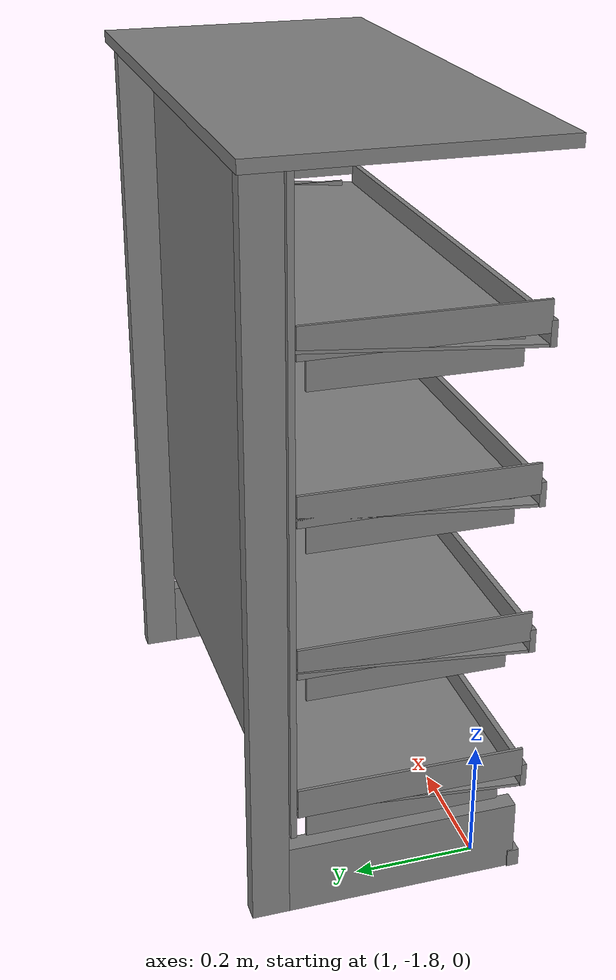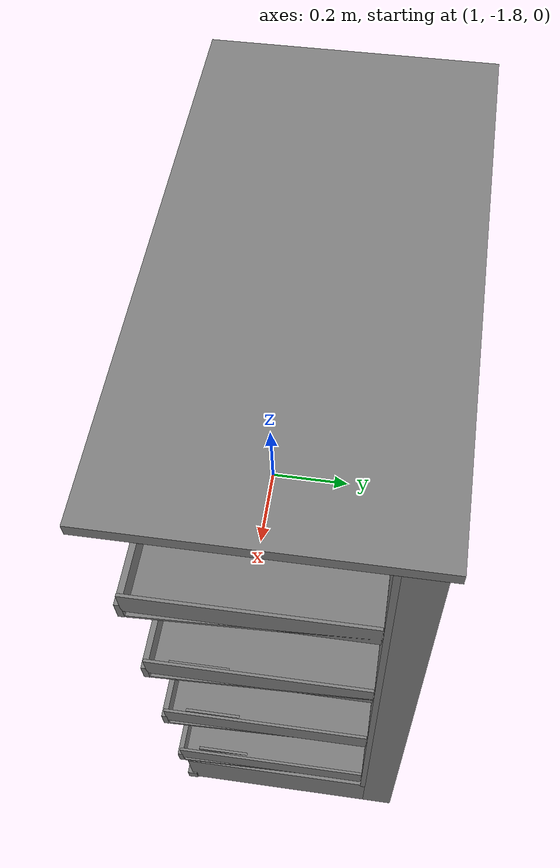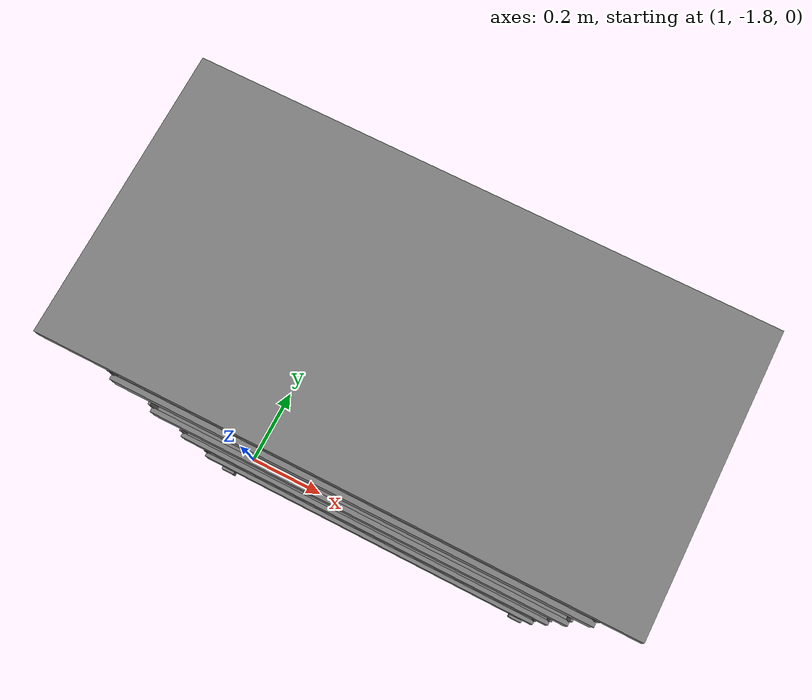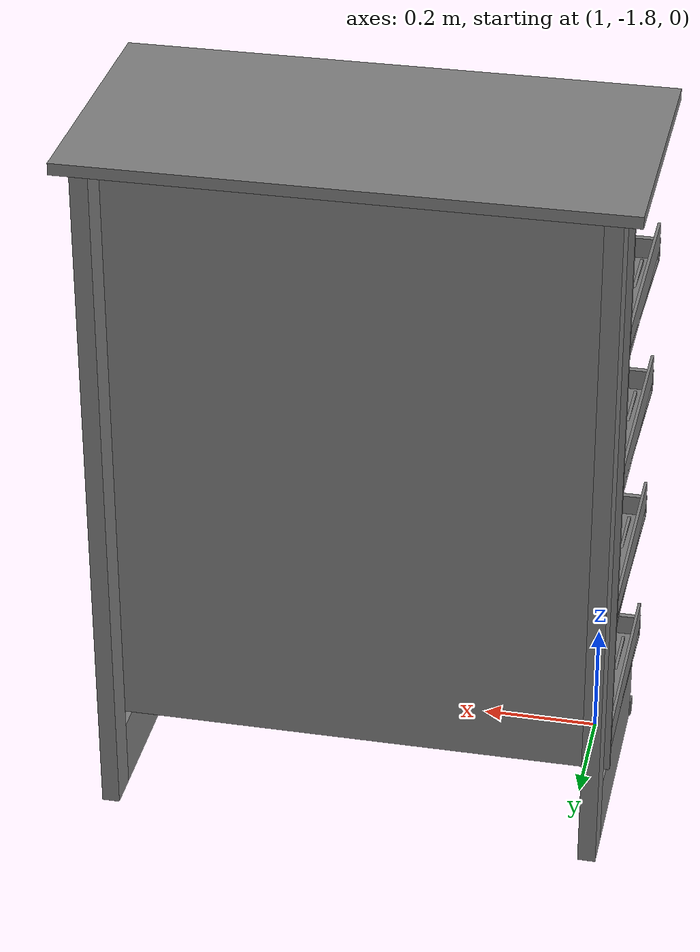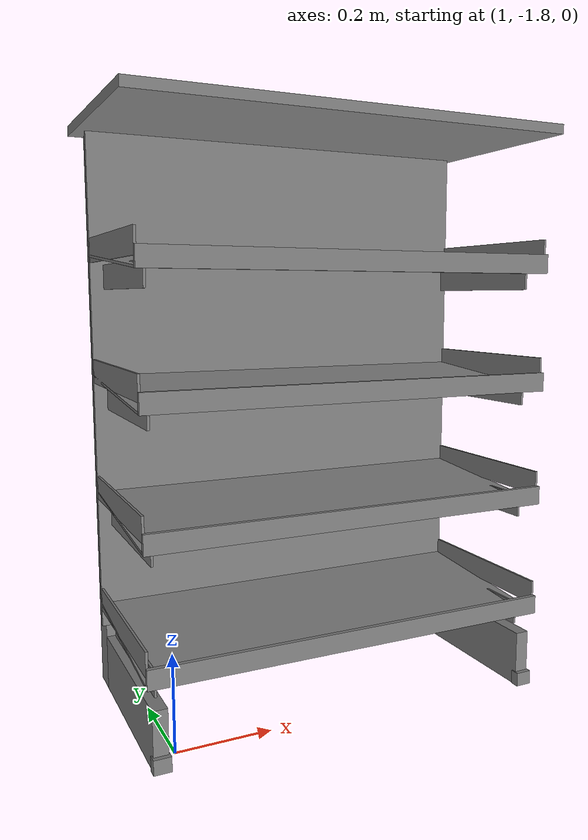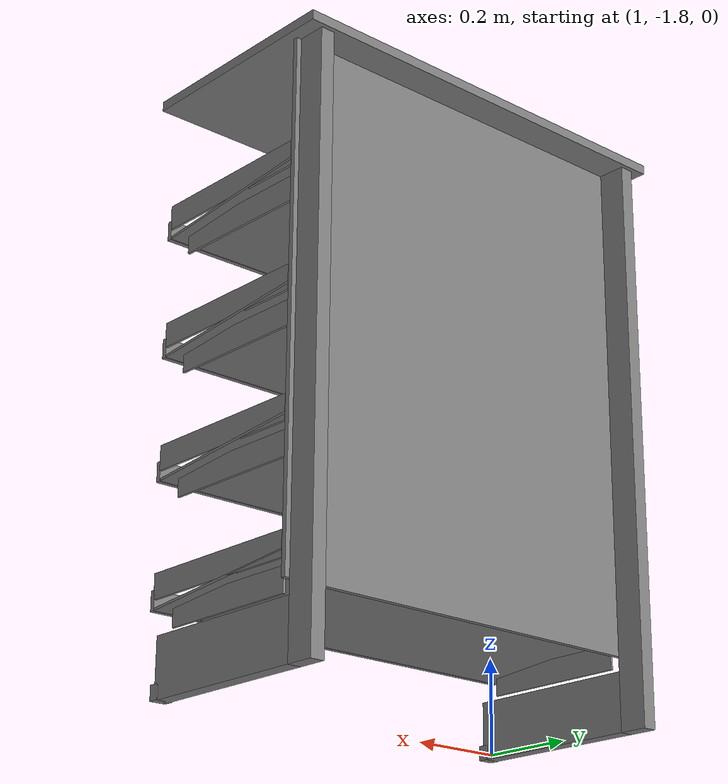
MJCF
<mujoco model="Shelf_Unified_Model">
  <compiler angle="radian"/>

  <worldbody>
    <geom name="Shelf_Unified_Model" size="0.015 0.03 0.6" pos="1.79 -1.44 0.6" quat="1 -1.73205e-07 -1.73205e-07 -1.73205e-07" type="box"/>
    <geom size="0.015 0.19 0.06" pos="1.79 -1.66 0.06" quat="1 -1.73205e-07 -1.73205e-07 -1.73205e-07" type="box"/>
    <geom size="0.015 0.03 0.6" pos="0.96 -1.44 0.6" quat="1 -1.73205e-07 -1.73205e-07 -1.73205e-07" type="box"/>
    <geom size="0.015 0.19 0.06" pos="0.96 -1.66 0.06" quat="1 -1.73205e-07 -1.73205e-07 -1.73205e-07" type="box"/>
    <geom size="0.0175 0.01 0.015" pos="1.79 -1.85 0.015" quat="1 -1.73205e-07 -1.73205e-07 -1.73205e-07" type="box"/>
    <geom size="0.0175 0.01 0.015" pos="0.96 -1.85 0.015" quat="1 -1.73205e-07 -1.73205e-07 -1.73205e-07" type="box"/>
    <geom size="0.46 0.235 0.01" pos="1.375 -1.635 1.21" quat="1 -1.73205e-07 -1.73205e-07 -1.73205e-07" type="box"/>
    <geom size="0.44 0.005 0.525" pos="1.375 -1.475 0.675" quat="1 -1.73205e-07 -1.73205e-07 -1.73205e-07" type="box"/>
    <geom size="0.44 0.185 0.0025" pos="1.375 -1.6643 0.183876" quat="0.999048 0.0436195 -1.80595e-07 -1.65485e-07" type="box"/>
    <geom size="0.44 0.185 0.0025" pos="1.375 -1.6643 0.433876" quat="0.999048 0.0436195 -1.80595e-07 -1.65485e-07" type="box"/>
    <geom size="0.44 0.185 0.0025" pos="1.375 -1.6643 0.683876" quat="0.999048 0.0436195 -1.80595e-07 -1.65485e-07" type="box"/>
    <geom size="0.44 0.185 0.0025" pos="1.375 -1.6643 0.933876" quat="0.999048 0.0436195 -1.80595e-07 -1.65485e-07" type="box"/>
    <geom size="0.0025 0.16 0.025" pos="1.79 -1.6619 0.156481" quat="1 -1.73205e-07 -1.73205e-07 -1.73205e-07" type="box"/>
    <geom size="0.0025 0.16 0.025" pos="0.96 -1.6619 0.156481" quat="1 -1.73205e-07 -1.73205e-07 -1.73205e-07" type="box"/>
    <geom size="0.44 0.005 0.02" pos="1.375 -1.8551 0.18475" quat="1 -1.73205e-07 -1.73205e-07 -1.73205e-07" type="box"/>
    <geom size="0.0025 0.185 0.025" pos="1.8125 -1.66669 0.211272" quat="1 -1.73205e-07 -1.73205e-07 -1.73205e-07" type="box"/>
    <geom size="0.0025 0.185 0.025" pos="0.9375 -1.66669 0.211272" quat="1 -1.73205e-07 -1.73205e-07 -1.73205e-07" type="box"/>
    <geom size="0.0025 0.16 0.025" pos="1.79 -1.6619 0.406481" quat="1 -1.73205e-07 -1.73205e-07 -1.73205e-07" type="box"/>
    <geom size="0.0025 0.16 0.025" pos="0.96 -1.6619 0.406481" quat="1 -1.73205e-07 -1.73205e-07 -1.73205e-07" type="box"/>
    <geom size="0.44 0.005 0.02" pos="1.375 -1.8551 0.43475" quat="1 -1.73205e-07 -1.73205e-07 -1.73205e-07" type="box"/>
    <geom size="0.0025 0.185 0.025" pos="1.8125 -1.66669 0.461272" quat="1 -1.73205e-07 -1.73205e-07 -1.73205e-07" type="box"/>
    <geom size="0.0025 0.185 0.025" pos="0.9375 -1.66669 0.461272" quat="1 -1.73205e-07 -1.73205e-07 -1.73205e-07" type="box"/>
    <geom size="0.0025 0.16 0.025" pos="1.79 -1.6619 0.656481" quat="1 -1.73205e-07 -1.73205e-07 -1.73205e-07" type="box"/>
    <geom size="0.0025 0.16 0.025" pos="0.96 -1.6619 0.656481" quat="1 -1.73205e-07 -1.73205e-07 -1.73205e-07" type="box"/>
    <geom size="0.44 0.005 0.02" pos="1.375 -1.8551 0.68475" quat="1 -1.73205e-07 -1.73205e-07 -1.73205e-07" type="box"/>
    <geom size="0.0025 0.185 0.025" pos="1.8125 -1.66669 0.711272" quat="1 -1.73205e-07 -1.73205e-07 -1.73205e-07" type="box"/>
    <geom size="0.0025 0.185 0.025" pos="0.9375 -1.66669 0.711272" quat="1 -1.73205e-07 -1.73205e-07 -1.73205e-07" type="box"/>
    <geom size="0.0025 0.16 0.025" pos="1.79 -1.6619 0.906481" quat="1 -1.73205e-07 -1.73205e-07 -1.73205e-07" type="box"/>
    <geom size="0.0025 0.16 0.025" pos="0.96 -1.6619 0.906481" quat="1 -1.73205e-07 -1.73205e-07 -1.73205e-07" type="box"/>
    <geom size="0.44 0.005 0.02" pos="1.375 -1.8551 0.93475" quat="1 -1.73205e-07 -1.73205e-07 -1.73205e-07" type="box"/>
    <geom size="0.0025 0.185 0.025" pos="1.8125 -1.66669 0.961272" quat="1 -1.73205e-07 -1.73205e-07 -1.73205e-07" type="box"/>
    <geom size="0.0025 0.185 0.025" pos="0.9375 -1.66669 0.961272" quat="1 -1.73205e-07 -1.73205e-07 -1.73205e-07" type="box"/>
  </worldbody>
</mujoco>
